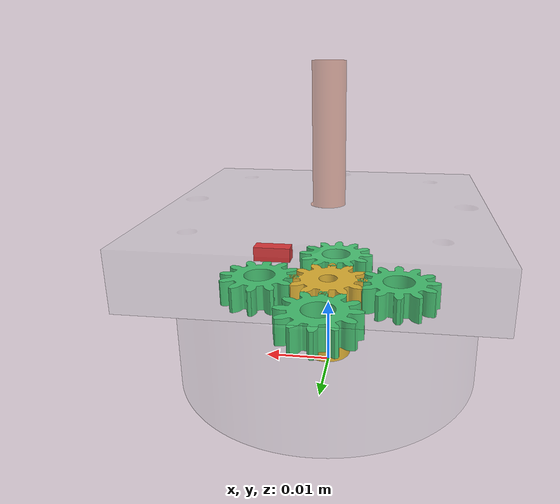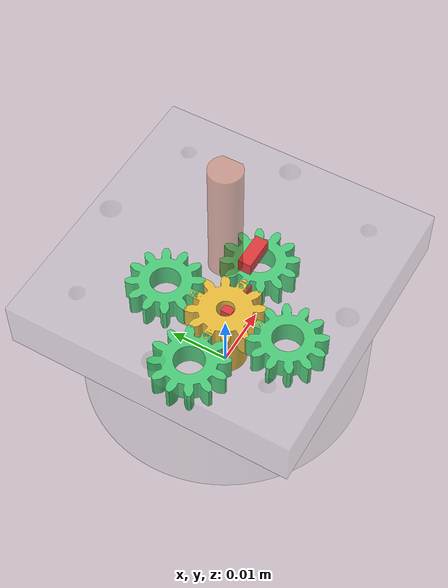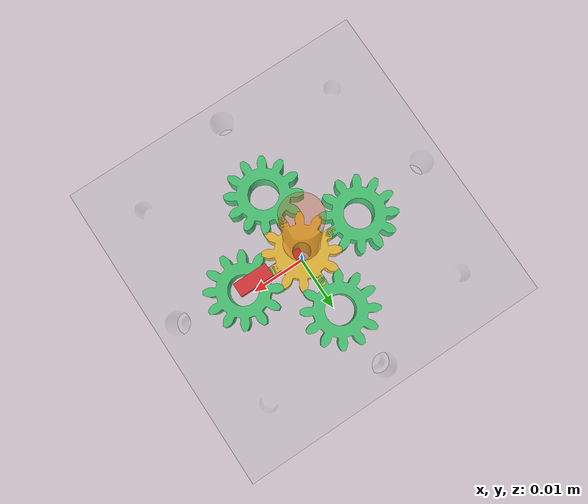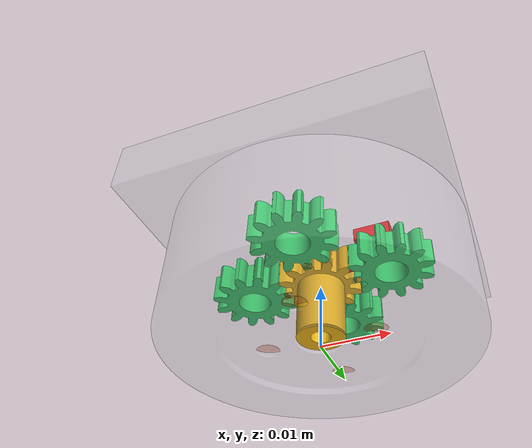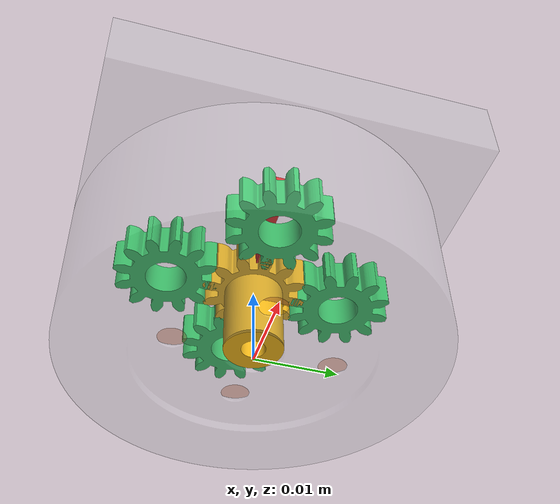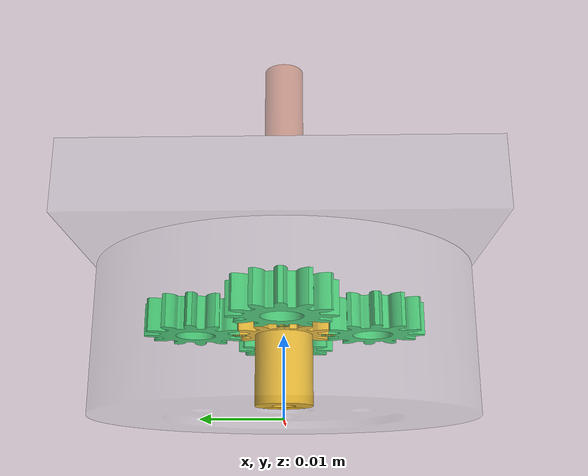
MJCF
<mujoco model="planetary_reducer_viewer">

  <compiler meshdir="out" angle="degree" autolimits="true"/>
  <option gravity="0 0 0"/>

  <asset>
    <mesh name="housing"        file="housing.stl"        scale="0.001 0.001 0.001"/>
    <mesh name="sun"            file="sun.stl"            scale="0.001 0.001 0.001"/>
    <mesh name="planet"         file="planet.stl"         scale="0.001 0.001 0.001"/>
    <mesh name="carrier_bottom" file="carrier_bottom.stl" scale="0.001 0.001 0.001"/>
    <mesh name="carrier_top"    file="carrier_top.stl"    scale="0.001 0.001 0.001"/>
    <mesh name="cap"            file="cap.stl"            scale="0.001 0.001 0.001"/>
    <material name="case" rgba="0.70 0.72 0.75 0.12"/>   <!-- translucent shell      -->
    <material name="sun"  rgba="0.95 0.72 0.10 1"/>      <!-- input: bright, opaque   -->
    <material name="plan" rgba="0.20 0.80 0.40 1"/>
    <material name="carr" rgba="0.80 0.45 0.30 0.45"/>   <!-- translucent: see the sun -->
    <material name="mark" rgba="0.90 0.10 0.10 1"/>      <!-- rotation index markers   -->
  </asset>

  <worldbody>
    <light pos="0.05 -0.05 0.12" dir="-0.4 0.4 -1"/>
    <camera name="iso" pos="0.055 -0.055 0.055" xyaxes="0.7 0.7 0 -0.4 0.4 0.82"/>

    <!-- fixed shell: housing (motor mount + BUILT-IN ring gear + input-bearing pocket)
         + translucent cap (NEMA-17 face + output bearing) -->
    <geom type="mesh" mesh="housing" material="case" contype="0" conaffinity="0"/>
    <geom type="mesh" mesh="cap" material="case" pos="0 0 0.0179" contype="0" conaffinity="0"/>

    <!-- sun on the motor shaft: 4x, the INPUT (gear on top + long press collar hanging
         down through the BIG input bearing's bore). A radial marker reads the fast spin. -->
    <body name="sun_body" pos="0 0 0.0015">
      <joint name="joint_sun" type="hinge" axis="0 0 1"/>
      <geom type="mesh" mesh="sun" material="sun" contype="0" conaffinity="0"/>
      <geom type="box" pos="0.0033 0 0.0105" size="0.0033 0.0009 0.0009" material="mark"
            contype="0" conaffinity="0"/>
    </body>

    <body name="carrier_body" pos="0 0 0">
      <joint name="joint_out" type="hinge" axis="0 0 1"/>
      <geom type="mesh" mesh="carrier_bottom" material="carr" pos="0 0 0.007"
            contype="0" conaffinity="0"/>
      <geom type="mesh" mesh="carrier_top" material="carr" pos="0 0 0.0144"
            contype="0" conaffinity="0"/>
      <geom type="box" pos="0.0085 0 0.0178" size="0.0028 0.0011 0.0011" material="mark"
            contype="0" conaffinity="0"/>

      <!-- planets ride the carrier (orbit 1x) and spin -3x about their journals -->
      <body name="planet0" pos="0.0108 0 0.010"><joint name="joint_planet0" type="hinge" axis="0 0 1"/>
        <geom type="mesh" mesh="planet" material="plan" contype="0" conaffinity="0"/></body>
      <body name="planet1" pos="0 0.0108 0.010"><joint name="joint_planet1" type="hinge" axis="0 0 1"/>
        <geom type="mesh" mesh="planet" material="plan" contype="0" conaffinity="0"/></body>
      <body name="planet2" pos="-0.0108 0 0.010"><joint name="joint_planet2" type="hinge" axis="0 0 1"/>
        <geom type="mesh" mesh="planet" material="plan" contype="0" conaffinity="0"/></body>
      <body name="planet3" pos="0 -0.0108 0.010"><joint name="joint_planet3" type="hinge" axis="0 0 1"/>
        <geom type="mesh" mesh="planet" material="plan" contype="0" conaffinity="0"/></body>
    </body>
  </worldbody>
</mujoco>
